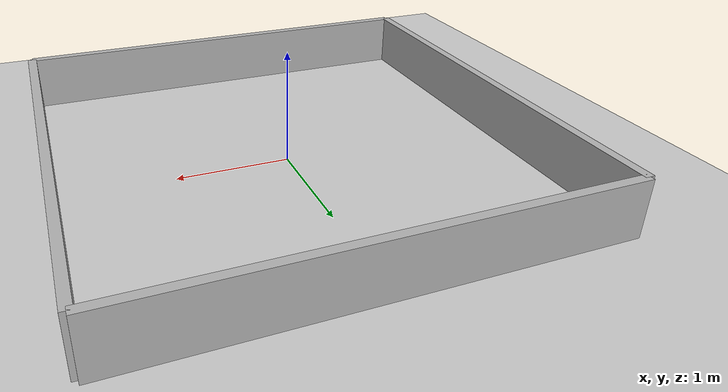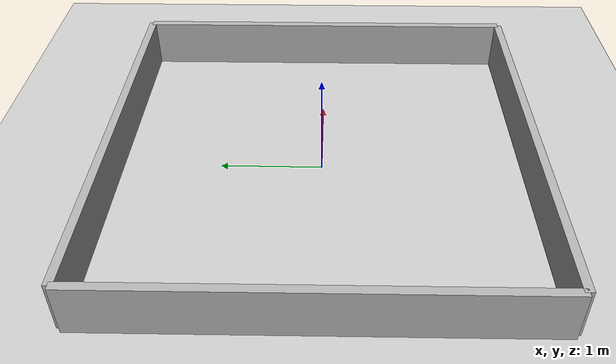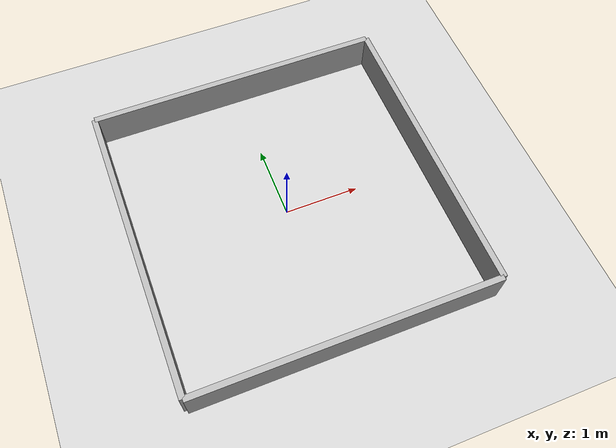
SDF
<?xml version="1.0"?>
<sdf version="1.6">
  <world name="empty">
    <plugin filename="gz-sim-physics-system" name="gz::sim::systems::Physics"/>
    <plugin filename="gz-sim-user-commands-system" name="gz::sim::systems::UserCommands"/>
    <plugin filename="gz-sim-scene-broadcaster-system" name="gz::sim::systems::SceneBroadcaster"/>
    <plugin filename="gz-sim-sensors-system" name="gz::sim::systems::Sensors">
      <render_engine>ogre2</render_engine>
    </plugin>

    <model name="ground_plane">
      <static>true</static>
      <link name="link">
        <collision name="collision">
          <geometry>
            <plane>
              <normal>0 0 1</normal>
              <size>20 20</size>
            </plane>
          </geometry>
        </collision>
        <visual name="visual">
          <geometry>
            <plane>
              <normal>0 0 1</normal>
              <size>20 20</size>
            </plane>
          </geometry>
          <material>
            <ambient>0.8 0.8 0.8 1</ambient>
            <diffuse>0.8 0.8 0.8 1</diffuse>
          </material>
        </visual>
      </link>
    </model>

    <model name="room_walls">
      <static>true</static>
      <link name="north_wall">
        <pose>0 2 0.25 0 0 0</pose>
        <collision name="collision">
          <geometry>
            <box>
              <size>4 0.08 0.5</size>
            </box>
          </geometry>
        </collision>
        <visual name="visual">
          <geometry>
            <box>
              <size>4 0.08 0.5</size>
            </box>
          </geometry>
          <material>
            <ambient>0.7 0.7 0.7 1</ambient>
            <diffuse>0.7 0.7 0.7 1</diffuse>
          </material>
        </visual>
      </link>

      <link name="south_wall">
        <pose>0 -2 0.25 0 0 0</pose>
        <collision name="collision">
          <geometry>
            <box>
              <size>4 0.08 0.5</size>
            </box>
          </geometry>
        </collision>
        <visual name="visual">
          <geometry>
            <box>
              <size>4 0.08 0.5</size>
            </box>
          </geometry>
          <material>
            <ambient>0.7 0.7 0.7 1</ambient>
            <diffuse>0.7 0.7 0.7 1</diffuse>
          </material>
        </visual>
      </link>

      <link name="east_wall">
        <pose>2 0 0.25 0 0 0</pose>
        <collision name="collision">
          <geometry>
            <box>
              <size>0.08 4 0.5</size>
            </box>
          </geometry>
        </collision>
        <visual name="visual">
          <geometry>
            <box>
              <size>0.08 4 0.5</size>
            </box>
          </geometry>
          <material>
            <ambient>0.7 0.7 0.7 1</ambient>
            <diffuse>0.7 0.7 0.7 1</diffuse>
          </material>
        </visual>
      </link>

      <link name="west_wall">
        <pose>-2 0 0.25 0 0 0</pose>
        <collision name="collision">
          <geometry>
            <box>
              <size>0.08 4 0.5</size>
            </box>
          </geometry>
        </collision>
        <visual name="visual">
          <geometry>
            <box>
              <size>0.08 4 0.5</size>
            </box>
          </geometry>
          <material>
            <ambient>0.7 0.7 0.7 1</ambient>
            <diffuse>0.7 0.7 0.7 1</diffuse>
          </material>
        </visual>
      </link>
    </model>

    <light name="sun" type="directional">
      <cast_shadows>true</cast_shadows>
      <pose>0 0 10 0 0 0</pose>
      <diffuse>0.8 0.8 0.8 1</diffuse>
      <specular>0.2 0.2 0.2 1</specular>
      <direction>-0.5 0.1 -0.9</direction>
    </light>
  </world>
</sdf>
